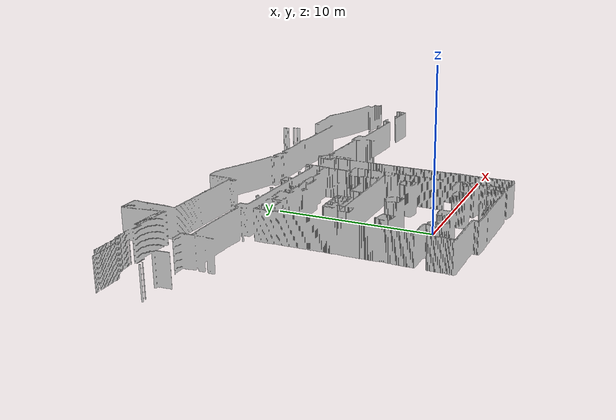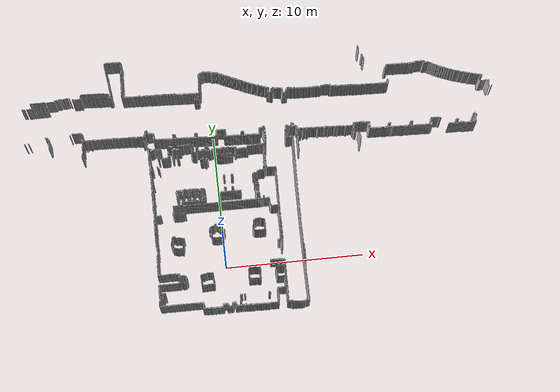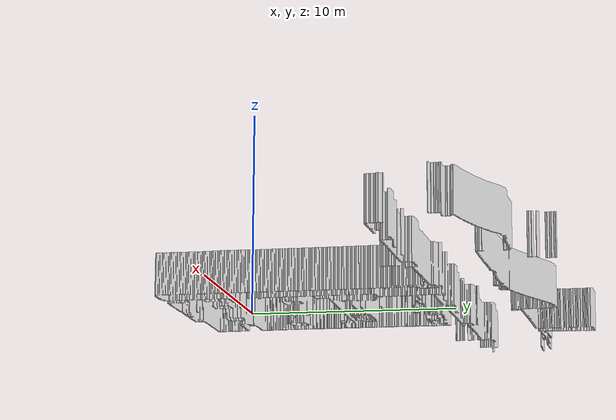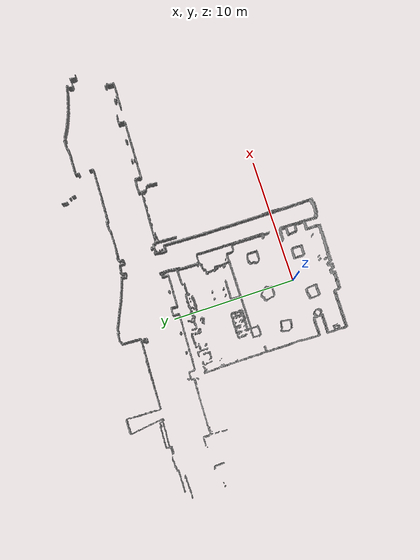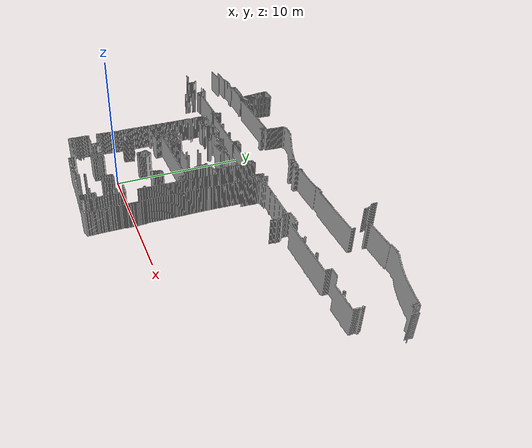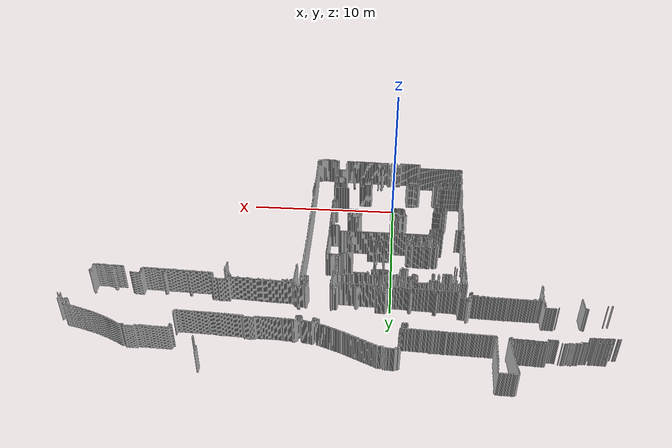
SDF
<?xml version="1.0" ?>
<sdf version="1.4">
  <model name="map">
    <link name="link">
      <inertial>
        <mass>15</mass>
        <inertia>
          <ixx>0.0</ixx>
          <ixy>0.0</ixy>
          <ixz>0.0</ixz>
          <iyy>0.0</iyy>
          <iyz>0.0</iyz>
          <izz>0.0</izz>
        </inertia>
      </inertial>

      <collision name="collision">
        <pose>5 0 0 0 0 0.58</pose>
        <geometry>
          <mesh>
            <uri>model://map/meshes/mapa_moviles.stl</uri> <!-- Se mantiene como STL -->
          </mesh>
        </geometry>
      </collision>

      <visual name="visual">
        <pose>5 0 0 0 0 0.58</pose>
        <geometry>
          <mesh>
            <uri>model://map/meshes/mapa_moviles.stl</uri> <!-- Se mantiene como STL -->
          </mesh>
        </geometry>

        <!-- Definición del material -->
        <material>
          <script>
            <uri>model://map/materials/scripts</uri> <!-- Carpeta donde está el .material -->
            <name>BrickMaterial</name> <!-- Nombre del material definido en map.material -->
          </script>
        </material>
      </visual>
    </link>
    <static>1</static>
  </model>
</sdf>
